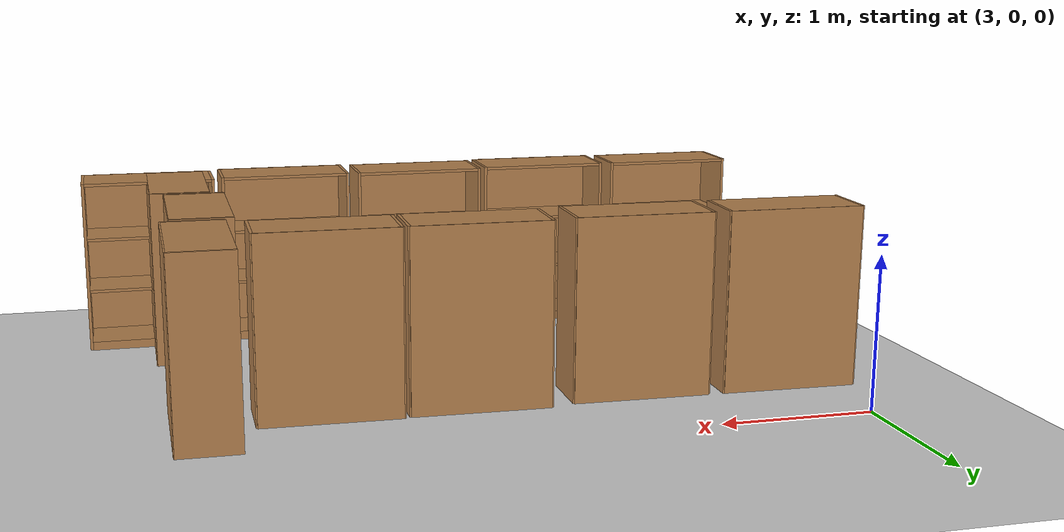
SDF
<sdf version="1.6">
 <world name="default">
  <model name="ground_plane">
   <static>1</static>
   <link name="link">
    <collision name="collision">
     <geometry><plane><normal>0 0 1</normal><size>100 100</size></plane></geometry>
     <surface><friction><ode><mu>100</mu><mu2>50</mu2></ode></friction></surface>
    </collision>
    <visual name="visual">
     <cast_shadows>0</cast_shadows>
     <geometry><plane><normal>0 0 1</normal><size>100 100</size></plane></geometry>
     <material>
      <script><uri>file://media/materials/scripts/gazebo.material</uri><name>Gazebo/Grey</name></script>
     </material>
    </visual>
   </link>
  </model>
  <model name="bookshelf_0_clone_6_clone">
   <static>1</static>
   <link name="link">
    <inertial><mass>1</mass></inertial>
    <collision name="back">
     <pose>0 0.005 0.6 0 -0 0</pose>
     <geometry><box><size>0.9 0.01 1.2</size></box></geometry>
    </collision>
    <visual name="visual1">
     <pose>0 0.005 0.6 0 -0 0</pose>
     <geometry><box><size>0.9 0.01 1.2</size></box></geometry>
     <material>
      <script><uri>file://media/materials/scripts/gazebo.material</uri><name>Gazebo/Wood</name></script>
     </material>
    </visual>
    <collision name="left_side">
     <pose>0.45 -0.195 0.6 0 -0 0</pose>
     <geometry><box><size>0.02 0.4 1.2</size></box></geometry>
    </collision>
    <visual name="visual2">
     <pose>0.45 -0.195 0.6 0 -0 0</pose>
     <geometry><box><size>0.02 0.4 1.2</size></box></geometry>
     <material>
      <script><uri>file://media/materials/scripts/gazebo.material</uri><name>Gazebo/Wood</name></script>
     </material>
    </visual>
    <collision name="right_side">
     <pose>-0.45 -0.195 0.6 0 -0 0</pose>
     <geometry><box><size>0.02 0.4 1.2</size></box></geometry>
    </collision>
    <visual name="visual3">
     <pose>-0.45 -0.195 0.6 0 -0 0</pose>
     <geometry><box><size>0.02 0.4 1.2</size></box></geometry>
     <material>
      <script><uri>file://media/materials/scripts/gazebo.material</uri><name>Gazebo/Wood</name></script>
     </material>
    </visual>
    <collision name="bottom">
     <pose>0 -0.195 0.03 0 -0 0</pose>
     <geometry><box><size>0.88 0.4 0.06</size></box></geometry>
    </collision>
    <visual name="visual4">
     <pose>0 -0.195 0.03 0 -0 0</pose>
     <geometry><box><size>0.88 0.4 0.06</size></box></geometry>
     <material>
      <script><uri>file://media/materials/scripts/gazebo.material</uri><name>Gazebo/Wood</name></script>
     </material>
    </visual>
    <collision name="top">
     <pose>0 -0.195 1.19 0 -0 0</pose>
     <geometry><box><size>0.88 0.4 0.02</size></box></geometry>
    </collision>
    <visual name="visual5">
     <pose>0 -0.195 1.19 0 -0 0</pose>
     <geometry><box><size>0.88 0.4 0.02</size></box></geometry>
     <material>
      <script><uri>file://media/materials/scripts/gazebo.material</uri><name>Gazebo/Wood</name></script>
     </material>
    </visual>
    <collision name="low_shelf">
     <pose>0 -0.195 0.43 0 -0 0</pose>
     <geometry><box><size>0.88 0.4 0.02</size></box></geometry>
    </collision>
    <visual name="visual6">
     <pose>0 -0.195 0.43 0 -0 0</pose>
     <geometry><box><size>0.88 0.4 0.02</size></box></geometry>
     <material>
      <script><uri>file://media/materials/scripts/gazebo.material</uri><name>Gazebo/Wood</name></script>
     </material>
    </visual>
    <collision name="high_shelf">
     <pose>0 -0.195 0.8 0 -0 0</pose>
     <geometry><box><size>0.88 0.4 0.02</size></box></geometry>
    </collision>
    <visual name="visual7">
     <pose>0 -0.195 0.8 0 -0 0</pose>
     <geometry><box><size>0.88 0.4 0.02</size></box></geometry>
     <material>
      <script><uri>file://media/materials/scripts/gazebo.material</uri><name>Gazebo/Wood</name></script>
     </material>
    </visual>
   </link>
   <pose>6.29282 -3.03785 0 0 -0 3.14</pose>
  </model>
  <model name="bookshelf_0_clone_6_clone_clone">
   <static>1</static>
   <link name="link">
    <inertial><mass>1</mass></inertial>
    <collision name="back">
     <pose>0 0.005 0.6 0 -0 0</pose>
     <geometry><box><size>0.9 0.01 1.2</size></box></geometry>
    </collision>
    <visual name="visual1">
     <pose>0 0.005 0.6 0 -0 0</pose>
     <geometry><box><size>0.9 0.01 1.2</size></box></geometry>
     <material>
      <script><uri>file://media/materials/scripts/gazebo.material</uri><name>Gazebo/Wood</name></script>
     </material>
    </visual>
    <collision name="left_side">
     <pose>0.45 -0.195 0.6 0 -0 0</pose>
     <geometry><box><size>0.02 0.4 1.2</size></box></geometry>
    </collision>
    <visual name="visual2">
     <pose>0.45 -0.195 0.6 0 -0 0</pose>
     <geometry><box><size>0.02 0.4 1.2</size></box></geometry>
     <material>
      <script><uri>file://media/materials/scripts/gazebo.material</uri><name>Gazebo/Wood</name></script>
     </material>
    </visual>
    <collision name="right_side">
     <pose>-0.45 -0.195 0.6 0 -0 0</pose>
     <geometry><box><size>0.02 0.4 1.2</size></box></geometry>
    </collision>
    <visual name="visual3">
     <pose>-0.45 -0.195 0.6 0 -0 0</pose>
     <geometry><box><size>0.02 0.4 1.2</size></box></geometry>
     <material>
      <script><uri>file://media/materials/scripts/gazebo.material</uri><name>Gazebo/Wood</name></script>
     </material>
    </visual>
    <collision name="bottom">
     <pose>0 -0.195 0.03 0 -0 0</pose>
     <geometry><box><size>0.88 0.4 0.06</size></box></geometry>
    </collision>
    <visual name="visual4">
     <pose>0 -0.195 0.03 0 -0 0</pose>
     <geometry><box><size>0.88 0.4 0.06</size></box></geometry>
     <material>
      <script><uri>file://media/materials/scripts/gazebo.material</uri><name>Gazebo/Wood</name></script>
     </material>
    </visual>
    <collision name="top">
     <pose>0 -0.195 1.19 0 -0 0</pose>
     <geometry><box><size>0.88 0.4 0.02</size></box></geometry>
    </collision>
    <visual name="visual5">
     <pose>0 -0.195 1.19 0 -0 0</pose>
     <geometry><box><size>0.88 0.4 0.02</size></box></geometry>
     <material>
      <script><uri>file://media/materials/scripts/gazebo.material</uri><name>Gazebo/Wood</name></script>
     </material>
    </visual>
    <collision name="low_shelf">
     <pose>0 -0.195 0.43 0 -0 0</pose>
     <geometry><box><size>0.88 0.4 0.02</size></box></geometry>
    </collision>
    <visual name="visual6">
     <pose>0 -0.195 0.43 0 -0 0</pose>
     <geometry><box><size>0.88 0.4 0.02</size></box></geometry>
     <material>
      <script><uri>file://media/materials/scripts/gazebo.material</uri><name>Gazebo/Wood</name></script>
     </material>
    </visual>
    <collision name="high_shelf">
     <pose>0 -0.195 0.8 0 -0 0</pose>
     <geometry><box><size>0.88 0.4 0.02</size></box></geometry>
    </collision>
    <visual name="visual7">
     <pose>0 -0.195 0.8 0 -0 0</pose>
     <geometry><box><size>0.88 0.4 0.02</size></box></geometry>
     <material>
      <script><uri>file://media/materials/scripts/gazebo.material</uri><name>Gazebo/Wood</name></script>
     </material>
    </visual>
   </link>
   <pose>7.26558 -2.99057 0 0 -0 3.14</pose>
  </model>
  <model name="bookshelf_0_clone_6_clone_clone_0">
   <static>1</static>
   <link name="link">
    <inertial><mass>1</mass></inertial>
    <collision name="back">
     <pose>0 0.005 0.6 0 -0 0</pose>
     <geometry><box><size>0.9 0.01 1.2</size></box></geometry>
    </collision>
    <visual name="visual1">
     <pose>0 0.005 0.6 0 -0 0</pose>
     <geometry><box><size>0.9 0.01 1.2</size></box></geometry>
     <material>
      <script><uri>file://media/materials/scripts/gazebo.material</uri><name>Gazebo/Wood</name></script>
     </material>
    </visual>
    <collision name="left_side">
     <pose>0.45 -0.195 0.6 0 -0 0</pose>
     <geometry><box><size>0.02 0.4 1.2</size></box></geometry>
    </collision>
    <visual name="visual2">
     <pose>0.45 -0.195 0.6 0 -0 0</pose>
     <geometry><box><size>0.02 0.4 1.2</size></box></geometry>
     <material>
      <script><uri>file://media/materials/scripts/gazebo.material</uri><name>Gazebo/Wood</name></script>
     </material>
    </visual>
    <collision name="right_side">
     <pose>-0.45 -0.195 0.6 0 -0 0</pose>
     <geometry><box><size>0.02 0.4 1.2</size></box></geometry>
    </collision>
    <visual name="visual3">
     <pose>-0.45 -0.195 0.6 0 -0 0</pose>
     <geometry><box><size>0.02 0.4 1.2</size></box></geometry>
     <material>
      <script><uri>file://media/materials/scripts/gazebo.material</uri><name>Gazebo/Wood</name></script>
     </material>
    </visual>
    <collision name="bottom">
     <pose>0 -0.195 0.03 0 -0 0</pose>
     <geometry><box><size>0.88 0.4 0.06</size></box></geometry>
    </collision>
    <visual name="visual4">
     <pose>0 -0.195 0.03 0 -0 0</pose>
     <geometry><box><size>0.88 0.4 0.06</size></box></geometry>
     <material>
      <script><uri>file://media/materials/scripts/gazebo.material</uri><name>Gazebo/Wood</name></script>
     </material>
    </visual>
    <collision name="top">
     <pose>0 -0.195 1.19 0 -0 0</pose>
     <geometry><box><size>0.88 0.4 0.02</size></box></geometry>
    </collision>
    <visual name="visual5">
     <pose>0 -0.195 1.19 0 -0 0</pose>
     <geometry><box><size>0.88 0.4 0.02</size></box></geometry>
     <material>
      <script><uri>file://media/materials/scripts/gazebo.material</uri><name>Gazebo/Wood</name></script>
     </material>
    </visual>
    <collision name="low_shelf">
     <pose>0 -0.195 0.43 0 -0 0</pose>
     <geometry><box><size>0.88 0.4 0.02</size></box></geometry>
    </collision>
    <visual name="visual6">
     <pose>0 -0.195 0.43 0 -0 0</pose>
     <geometry><box><size>0.88 0.4 0.02</size></box></geometry>
     <material>
      <script><uri>file://media/materials/scripts/gazebo.material</uri><name>Gazebo/Wood</name></script>
     </material>
    </visual>
    <collision name="high_shelf">
     <pose>0 -0.195 0.8 0 -0 0</pose>
     <geometry><box><size>0.88 0.4 0.02</size></box></geometry>
    </collision>
    <visual name="visual7">
     <pose>0 -0.195 0.8 0 -0 0</pose>
     <geometry><box><size>0.88 0.4 0.02</size></box></geometry>
     <material>
      <script><uri>file://media/materials/scripts/gazebo.material</uri><name>Gazebo/Wood</name></script>
     </material>
    </visual>
   </link>
   <pose>5.30807 -3.01833 0 0 -0 3.14</pose>
  </model>
  <model name="bookshelf_0_clone_6_clone_clone_1">
   <static>1</static>
   <link name="link">
    <inertial><mass>1</mass></inertial>
    <collision name="back">
     <pose>0 0.005 0.6 0 -0 0</pose>
     <geometry><box><size>0.9 0.01 1.2</size></box></geometry>
    </collision>
    <visual name="visual1">
     <pose>0 0.005 0.6 0 -0 0</pose>
     <geometry><box><size>0.9 0.01 1.2</size></box></geometry>
     <material>
      <script><uri>file://media/materials/scripts/gazebo.material</uri><name>Gazebo/Wood</name></script>
     </material>
    </visual>
    <collision name="left_side">
     <pose>0.45 -0.195 0.6 0 -0 0</pose>
     <geometry><box><size>0.02 0.4 1.2</size></box></geometry>
    </collision>
    <visual name="visual2">
     <pose>0.45 -0.195 0.6 0 -0 0</pose>
     <geometry><box><size>0.02 0.4 1.2</size></box></geometry>
     <material>
      <script><uri>file://media/materials/scripts/gazebo.material</uri><name>Gazebo/Wood</name></script>
     </material>
    </visual>
    <collision name="right_side">
     <pose>-0.45 -0.195 0.6 0 -0 0</pose>
     <geometry><box><size>0.02 0.4 1.2</size></box></geometry>
    </collision>
    <visual name="visual3">
     <pose>-0.45 -0.195 0.6 0 -0 0</pose>
     <geometry><box><size>0.02 0.4 1.2</size></box></geometry>
     <material>
      <script><uri>file://media/materials/scripts/gazebo.material</uri><name>Gazebo/Wood</name></script>
     </material>
    </visual>
    <collision name="bottom">
     <pose>0 -0.195 0.03 0 -0 0</pose>
     <geometry><box><size>0.88 0.4 0.06</size></box></geometry>
    </collision>
    <visual name="visual4">
     <pose>0 -0.195 0.03 0 -0 0</pose>
     <geometry><box><size>0.88 0.4 0.06</size></box></geometry>
     <material>
      <script><uri>file://media/materials/scripts/gazebo.material</uri><name>Gazebo/Wood</name></script>
     </material>
    </visual>
    <collision name="top">
     <pose>0 -0.195 1.19 0 -0 0</pose>
     <geometry><box><size>0.88 0.4 0.02</size></box></geometry>
    </collision>
    <visual name="visual5">
     <pose>0 -0.195 1.19 0 -0 0</pose>
     <geometry><box><size>0.88 0.4 0.02</size></box></geometry>
     <material>
      <script><uri>file://media/materials/scripts/gazebo.material</uri><name>Gazebo/Wood</name></script>
     </material>
    </visual>
    <collision name="low_shelf">
     <pose>0 -0.195 0.43 0 -0 0</pose>
     <geometry><box><size>0.88 0.4 0.02</size></box></geometry>
    </collision>
    <visual name="visual6">
     <pose>0 -0.195 0.43 0 -0 0</pose>
     <geometry><box><size>0.88 0.4 0.02</size></box></geometry>
     <material>
      <script><uri>file://media/materials/scripts/gazebo.material</uri><name>Gazebo/Wood</name></script>
     </material>
    </visual>
    <collision name="high_shelf">
     <pose>0 -0.195 0.8 0 -0 0</pose>
     <geometry><box><size>0.88 0.4 0.02</size></box></geometry>
    </collision>
    <visual name="visual7">
     <pose>0 -0.195 0.8 0 -0 0</pose>
     <geometry><box><size>0.88 0.4 0.02</size></box></geometry>
     <material>
      <script><uri>file://media/materials/scripts/gazebo.material</uri><name>Gazebo/Wood</name></script>
     </material>
    </visual>
   </link>
   <pose>4.34889 -3.05257 0 0 -0 3.14</pose>
  </model>
  <model name="bookshelf_0_clone_6_clone_clone_2">
   <static>1</static>
   <link name="link">
    <inertial><mass>1</mass></inertial>
    <collision name="back">
     <pose>0 0.005 0.6 0 -0 0</pose>
     <geometry><box><size>0.9 0.01 1.2</size></box></geometry>
    </collision>
    <visual name="visual1">
     <pose>0 0.005 0.6 0 -0 0</pose>
     <geometry><box><size>0.9 0.01 1.2</size></box></geometry>
     <material>
      <script><uri>file://media/materials/scripts/gazebo.material</uri><name>Gazebo/Wood</name></script>
     </material>
    </visual>
    <collision name="left_side">
     <pose>0.45 -0.195 0.6 0 -0 0</pose>
     <geometry><box><size>0.02 0.4 1.2</size></box></geometry>
    </collision>
    <visual name="visual2">
     <pose>0.45 -0.195 0.6 0 -0 0</pose>
     <geometry><box><size>0.02 0.4 1.2</size></box></geometry>
     <material>
      <script><uri>file://media/materials/scripts/gazebo.material</uri><name>Gazebo/Wood</name></script>
     </material>
    </visual>
    <collision name="right_side">
     <pose>-0.45 -0.195 0.6 0 -0 0</pose>
     <geometry><box><size>0.02 0.4 1.2</size></box></geometry>
    </collision>
    <visual name="visual3">
     <pose>-0.45 -0.195 0.6 0 -0 0</pose>
     <geometry><box><size>0.02 0.4 1.2</size></box></geometry>
     <material>
      <script><uri>file://media/materials/scripts/gazebo.material</uri><name>Gazebo/Wood</name></script>
     </material>
    </visual>
    <collision name="bottom">
     <pose>0 -0.195 0.03 0 -0 0</pose>
     <geometry><box><size>0.88 0.4 0.06</size></box></geometry>
    </collision>
    <visual name="visual4">
     <pose>0 -0.195 0.03 0 -0 0</pose>
     <geometry><box><size>0.88 0.4 0.06</size></box></geometry>
     <material>
      <script><uri>file://media/materials/scripts/gazebo.material</uri><name>Gazebo/Wood</name></script>
     </material>
    </visual>
    <collision name="top">
     <pose>0 -0.195 1.19 0 -0 0</pose>
     <geometry><box><size>0.88 0.4 0.02</size></box></geometry>
    </collision>
    <visual name="visual5">
     <pose>0 -0.195 1.19 0 -0 0</pose>
     <geometry><box><size>0.88 0.4 0.02</size></box></geometry>
     <material>
      <script><uri>file://media/materials/scripts/gazebo.material</uri><name>Gazebo/Wood</name></script>
     </material>
    </visual>
    <collision name="low_shelf">
     <pose>0 -0.195 0.43 0 -0 0</pose>
     <geometry><box><size>0.88 0.4 0.02</size></box></geometry>
    </collision>
    <visual name="visual6">
     <pose>0 -0.195 0.43 0 -0 0</pose>
     <geometry><box><size>0.88 0.4 0.02</size></box></geometry>
     <material>
      <script><uri>file://media/materials/scripts/gazebo.material</uri><name>Gazebo/Wood</name></script>
     </material>
    </visual>
    <collision name="high_shelf">
     <pose>0 -0.195 0.8 0 -0 0</pose>
     <geometry><box><size>0.88 0.4 0.02</size></box></geometry>
    </collision>
    <visual name="visual7">
     <pose>0 -0.195 0.8 0 -0 0</pose>
     <geometry><box><size>0.88 0.4 0.02</size></box></geometry>
     <material>
      <script><uri>file://media/materials/scripts/gazebo.material</uri><name>Gazebo/Wood</name></script>
     </material>
    </visual>
   </link>
   <pose>3.36326 -3.03364 0 0 -0 3.14</pose>
  </model>
  <model name="bookshelf_0_clone_6_clone_clone_13_clone_clone_clone_0">
   <static>1</static>
   <link name="link">
    <inertial><mass>1</mass></inertial>
    <collision name="back">
     <pose>0 0.005 0.6 0 -0 0</pose>
     <geometry><box><size>0.9 0.01 1.2</size></box></geometry>
    </collision>
    <visual name="visual1">
     <pose>0 0.005 0.6 0 -0 0</pose>
     <geometry><box><size>0.9 0.01 1.2</size></box></geometry>
     <material>
      <script><uri>file://media/materials/scripts/gazebo.material</uri><name>Gazebo/Wood</name></script>
     </material>
    </visual>
    <collision name="left_side">
     <pose>0.45 -0.195 0.6 0 -0 0</pose>
     <geometry><box><size>0.02 0.4 1.2</size></box></geometry>
    </collision>
    <visual name="visual2">
     <pose>0.45 -0.195 0.6 0 -0 0</pose>
     <geometry><box><size>0.02 0.4 1.2</size></box></geometry>
     <material>
      <script><uri>file://media/materials/scripts/gazebo.material</uri><name>Gazebo/Wood</name></script>
     </material>
    </visual>
    <collision name="right_side">
     <pose>-0.45 -0.195 0.6 0 -0 0</pose>
     <geometry><box><size>0.02 0.4 1.2</size></box></geometry>
    </collision>
    <visual name="visual3">
     <pose>-0.45 -0.195 0.6 0 -0 0</pose>
     <geometry><box><size>0.02 0.4 1.2</size></box></geometry>
     <material>
      <script><uri>file://media/materials/scripts/gazebo.material</uri><name>Gazebo/Wood</name></script>
     </material>
    </visual>
    <collision name="bottom">
     <pose>0 -0.195 0.03 0 -0 0</pose>
     <geometry><box><size>0.88 0.4 0.06</size></box></geometry>
    </collision>
    <visual name="visual4">
     <pose>0 -0.195 0.03 0 -0 0</pose>
     <geometry><box><size>0.88 0.4 0.06</size></box></geometry>
     <material>
      <script><uri>file://media/materials/scripts/gazebo.material</uri><name>Gazebo/Wood</name></script>
     </material>
    </visual>
    <collision name="top">
     <pose>0 -0.195 1.19 0 -0 0</pose>
     <geometry><box><size>0.88 0.4 0.02</size></box></geometry>
    </collision>
    <visual name="visual5">
     <pose>0 -0.195 1.19 0 -0 0</pose>
     <geometry><box><size>0.88 0.4 0.02</size></box></geometry>
     <material>
      <script><uri>file://media/materials/scripts/gazebo.material</uri><name>Gazebo/Wood</name></script>
     </material>
    </visual>
    <collision name="low_shelf">
     <pose>0 -0.195 0.43 0 -0 0</pose>
     <geometry><box><size>0.88 0.4 0.02</size></box></geometry>
    </collision>
    <visual name="visual6">
     <pose>0 -0.195 0.43 0 -0 0</pose>
     <geometry><box><size>0.88 0.4 0.02</size></box></geometry>
     <material>
      <script><uri>file://media/materials/scripts/gazebo.material</uri><name>Gazebo/Wood</name></script>
     </material>
    </visual>
    <collision name="high_shelf">
     <pose>0 -0.195 0.8 0 -0 0</pose>
     <geometry><box><size>0.88 0.4 0.02</size></box></geometry>
    </collision>
    <visual name="visual7">
     <pose>0 -0.195 0.8 0 -0 0</pose>
     <geometry><box><size>0.88 0.4 0.02</size></box></geometry>
     <material>
      <script><uri>file://media/materials/scripts/gazebo.material</uri><name>Gazebo/Wood</name></script>
     </material>
    </visual>
   </link>
   <pose>3.28702 -0.572642 0 0 0 -0.024715</pose>
  </model>
  <model name="bookshelf_0_clone_6_clone_clone_13_clone_clone_clone_0_clone">
   <static>1</static>
   <link name="link">
    <inertial><mass>1</mass></inertial>
    <collision name="back">
     <pose>0 0.005 0.6 0 -0 0</pose>
     <geometry><box><size>0.9 0.01 1.2</size></box></geometry>
    </collision>
    <visual name="visual1">
     <pose>0 0.005 0.6 0 -0 0</pose>
     <geometry><box><size>0.9 0.01 1.2</size></box></geometry>
     <material>
      <script><uri>file://media/materials/scripts/gazebo.material</uri><name>Gazebo/Wood</name></script>
     </material>
    </visual>
    <collision name="left_side">
     <pose>0.45 -0.195 0.6 0 -0 0</pose>
     <geometry><box><size>0.02 0.4 1.2</size></box></geometry>
    </collision>
    <visual name="visual2">
     <pose>0.45 -0.195 0.6 0 -0 0</pose>
     <geometry><box><size>0.02 0.4 1.2</size></box></geometry>
     <material>
      <script><uri>file://media/materials/scripts/gazebo.material</uri><name>Gazebo/Wood</name></script>
     </material>
    </visual>
    <collision name="right_side">
     <pose>-0.45 -0.195 0.6 0 -0 0</pose>
     <geometry><box><size>0.02 0.4 1.2</size></box></geometry>
    </collision>
    <visual name="visual3">
     <pose>-0.45 -0.195 0.6 0 -0 0</pose>
     <geometry><box><size>0.02 0.4 1.2</size></box></geometry>
     <material>
      <script><uri>file://media/materials/scripts/gazebo.material</uri><name>Gazebo/Wood</name></script>
     </material>
    </visual>
    <collision name="bottom">
     <pose>0 -0.195 0.03 0 -0 0</pose>
     <geometry><box><size>0.88 0.4 0.06</size></box></geometry>
    </collision>
    <visual name="visual4">
     <pose>0 -0.195 0.03 0 -0 0</pose>
     <geometry><box><size>0.88 0.4 0.06</size></box></geometry>
     <material>
      <script><uri>file://media/materials/scripts/gazebo.material</uri><name>Gazebo/Wood</name></script>
     </material>
    </visual>
    <collision name="top">
     <pose>0 -0.195 1.19 0 -0 0</pose>
     <geometry><box><size>0.88 0.4 0.02</size></box></geometry>
    </collision>
    <visual name="visual5">
     <pose>0 -0.195 1.19 0 -0 0</pose>
     <geometry><box><size>0.88 0.4 0.02</size></box></geometry>
     <material>
      <script><uri>file://media/materials/scripts/gazebo.material</uri><name>Gazebo/Wood</name></script>
     </material>
    </visual>
    <collision name="low_shelf">
     <pose>0 -0.195 0.43 0 -0 0</pose>
     <geometry><box><size>0.88 0.4 0.02</size></box></geometry>
    </collision>
    <visual name="visual6">
     <pose>0 -0.195 0.43 0 -0 0</pose>
     <geometry><box><size>0.88 0.4 0.02</size></box></geometry>
     <material>
      <script><uri>file://media/materials/scripts/gazebo.material</uri><name>Gazebo/Wood</name></script>
     </material>
    </visual>
    <collision name="high_shelf">
     <pose>0 -0.195 0.8 0 -0 0</pose>
     <geometry><box><size>0.88 0.4 0.02</size></box></geometry>
    </collision>
    <visual name="visual7">
     <pose>0 -0.195 0.8 0 -0 0</pose>
     <geometry><box><size>0.88 0.4 0.02</size></box></geometry>
     <material>
      <script><uri>file://media/materials/scripts/gazebo.material</uri><name>Gazebo/Wood</name></script>
     </material>
    </visual>
   </link>
   <pose>4.2972 -0.59636 0 0 0 -0.024715</pose>
  </model>
  <model name="bookshelf_0_clone_6_clone_clone_13_clone_clone_clone_0_clone_0">
   <static>1</static>
   <link name="link">
    <inertial><mass>1</mass></inertial>
    <collision name="back">
     <pose>0 0.005 0.6 0 -0 0</pose>
     <geometry><box><size>0.9 0.01 1.2</size></box></geometry>
    </collision>
    <visual name="visual1">
     <pose>0 0.005 0.6 0 -0 0</pose>
     <geometry><box><size>0.9 0.01 1.2</size></box></geometry>
     <material>
      <script><uri>file://media/materials/scripts/gazebo.material</uri><name>Gazebo/Wood</name></script>
     </material>
    </visual>
    <collision name="left_side">
     <pose>0.45 -0.195 0.6 0 -0 0</pose>
     <geometry><box><size>0.02 0.4 1.2</size></box></geometry>
    </collision>
    <visual name="visual2">
     <pose>0.45 -0.195 0.6 0 -0 0</pose>
     <geometry><box><size>0.02 0.4 1.2</size></box></geometry>
     <material>
      <script><uri>file://media/materials/scripts/gazebo.material</uri><name>Gazebo/Wood</name></script>
     </material>
    </visual>
    <collision name="right_side">
     <pose>-0.45 -0.195 0.6 0 -0 0</pose>
     <geometry><box><size>0.02 0.4 1.2</size></box></geometry>
    </collision>
    <visual name="visual3">
     <pose>-0.45 -0.195 0.6 0 -0 0</pose>
     <geometry><box><size>0.02 0.4 1.2</size></box></geometry>
     <material>
      <script><uri>file://media/materials/scripts/gazebo.material</uri><name>Gazebo/Wood</name></script>
     </material>
    </visual>
    <collision name="bottom">
     <pose>0 -0.195 0.03 0 -0 0</pose>
     <geometry><box><size>0.88 0.4 0.06</size></box></geometry>
    </collision>
    <visual name="visual4">
     <pose>0 -0.195 0.03 0 -0 0</pose>
     <geometry><box><size>0.88 0.4 0.06</size></box></geometry>
     <material>
      <script><uri>file://media/materials/scripts/gazebo.material</uri><name>Gazebo/Wood</name></script>
     </material>
    </visual>
    <collision name="top">
     <pose>0 -0.195 1.19 0 -0 0</pose>
     <geometry><box><size>0.88 0.4 0.02</size></box></geometry>
    </collision>
    <visual name="visual5">
     <pose>0 -0.195 1.19 0 -0 0</pose>
     <geometry><box><size>0.88 0.4 0.02</size></box></geometry>
     <material>
      <script><uri>file://media/materials/scripts/gazebo.material</uri><name>Gazebo/Wood</name></script>
     </material>
    </visual>
    <collision name="low_shelf">
     <pose>0 -0.195 0.43 0 -0 0</pose>
     <geometry><box><size>0.88 0.4 0.02</size></box></geometry>
    </collision>
    <visual name="visual6">
     <pose>0 -0.195 0.43 0 -0 0</pose>
     <geometry><box><size>0.88 0.4 0.02</size></box></geometry>
     <material>
      <script><uri>file://media/materials/scripts/gazebo.material</uri><name>Gazebo/Wood</name></script>
     </material>
    </visual>
    <collision name="high_shelf">
     <pose>0 -0.195 0.8 0 -0 0</pose>
     <geometry><box><size>0.88 0.4 0.02</size></box></geometry>
    </collision>
    <visual name="visual7">
     <pose>0 -0.195 0.8 0 -0 0</pose>
     <geometry><box><size>0.88 0.4 0.02</size></box></geometry>
     <material>
      <script><uri>file://media/materials/scripts/gazebo.material</uri><name>Gazebo/Wood</name></script>
     </material>
    </visual>
   </link>
   <pose>5.35637 -0.579797 0 0 0 -0.024715</pose>
  </model>
  <model name="bookshelf_0_clone_6_clone_clone_13_clone_clone_clone_0_clone_1">
   <static>1</static>
   <link name="link">
    <inertial><mass>1</mass></inertial>
    <collision name="back">
     <pose>0 0.005 0.6 0 -0 0</pose>
     <geometry><box><size>0.9 0.01 1.2</size></box></geometry>
    </collision>
    <visual name="visual1">
     <pose>0 0.005 0.6 0 -0 0</pose>
     <geometry><box><size>0.9 0.01 1.2</size></box></geometry>
     <material>
      <script><uri>file://media/materials/scripts/gazebo.material</uri><name>Gazebo/Wood</name></script>
     </material>
    </visual>
    <collision name="left_side">
     <pose>0.45 -0.195 0.6 0 -0 0</pose>
     <geometry><box><size>0.02 0.4 1.2</size></box></geometry>
    </collision>
    <visual name="visual2">
     <pose>0.45 -0.195 0.6 0 -0 0</pose>
     <geometry><box><size>0.02 0.4 1.2</size></box></geometry>
     <material>
      <script><uri>file://media/materials/scripts/gazebo.material</uri><name>Gazebo/Wood</name></script>
     </material>
    </visual>
    <collision name="right_side">
     <pose>-0.45 -0.195 0.6 0 -0 0</pose>
     <geometry><box><size>0.02 0.4 1.2</size></box></geometry>
    </collision>
    <visual name="visual3">
     <pose>-0.45 -0.195 0.6 0 -0 0</pose>
     <geometry><box><size>0.02 0.4 1.2</size></box></geometry>
     <material>
      <script><uri>file://media/materials/scripts/gazebo.material</uri><name>Gazebo/Wood</name></script>
     </material>
    </visual>
    <collision name="bottom">
     <pose>0 -0.195 0.03 0 -0 0</pose>
     <geometry><box><size>0.88 0.4 0.06</size></box></geometry>
    </collision>
    <visual name="visual4">
     <pose>0 -0.195 0.03 0 -0 0</pose>
     <geometry><box><size>0.88 0.4 0.06</size></box></geometry>
     <material>
      <script><uri>file://media/materials/scripts/gazebo.material</uri><name>Gazebo/Wood</name></script>
     </material>
    </visual>
    <collision name="top">
     <pose>0 -0.195 1.19 0 -0 0</pose>
     <geometry><box><size>0.88 0.4 0.02</size></box></geometry>
    </collision>
    <visual name="visual5">
     <pose>0 -0.195 1.19 0 -0 0</pose>
     <geometry><box><size>0.88 0.4 0.02</size></box></geometry>
     <material>
      <script><uri>file://media/materials/scripts/gazebo.material</uri><name>Gazebo/Wood</name></script>
     </material>
    </visual>
    <collision name="low_shelf">
     <pose>0 -0.195 0.43 0 -0 0</pose>
     <geometry><box><size>0.88 0.4 0.02</size></box></geometry>
    </collision>
    <visual name="visual6">
     <pose>0 -0.195 0.43 0 -0 0</pose>
     <geometry><box><size>0.88 0.4 0.02</size></box></geometry>
     <material>
      <script><uri>file://media/materials/scripts/gazebo.material</uri><name>Gazebo/Wood</name></script>
     </material>
    </visual>
    <collision name="high_shelf">
     <pose>0 -0.195 0.8 0 -0 0</pose>
     <geometry><box><size>0.88 0.4 0.02</size></box></geometry>
    </collision>
    <visual name="visual7">
     <pose>0 -0.195 0.8 0 -0 0</pose>
     <geometry><box><size>0.88 0.4 0.02</size></box></geometry>
     <material>
      <script><uri>file://media/materials/scripts/gazebo.material</uri><name>Gazebo/Wood</name></script>
     </material>
    </visual>
   </link>
   <pose>6.29832 -0.590843 0 0 0 -0.024715</pose>
  </model>
  <model name="bookshelf_0_clone_6_clone_clone_13_clone_clone_clone_0_clone_2">
   <static>1</static>
   <link name="link">
    <inertial><mass>1</mass></inertial>
    <collision name="back">
     <pose>0 0.005 0.6 0 -0 0</pose>
     <geometry><box><size>0.9 0.01 1.2</size></box></geometry>
    </collision>
    <visual name="visual1">
     <pose>0 0.005 0.6 0 -0 0</pose>
     <geometry><box><size>0.9 0.01 1.2</size></box></geometry>
     <material>
      <script><uri>file://media/materials/scripts/gazebo.material</uri><name>Gazebo/Wood</name></script>
     </material>
    </visual>
    <collision name="left_side">
     <pose>0.45 -0.195 0.6 0 -0 0</pose>
     <geometry><box><size>0.02 0.4 1.2</size></box></geometry>
    </collision>
    <visual name="visual2">
     <pose>0.45 -0.195 0.6 0 -0 0</pose>
     <geometry><box><size>0.02 0.4 1.2</size></box></geometry>
     <material>
      <script><uri>file://media/materials/scripts/gazebo.material</uri><name>Gazebo/Wood</name></script>
     </material>
    </visual>
    <collision name="right_side">
     <pose>-0.45 -0.195 0.6 0 -0 0</pose>
     <geometry><box><size>0.02 0.4 1.2</size></box></geometry>
    </collision>
    <visual name="visual3">
     <pose>-0.45 -0.195 0.6 0 -0 0</pose>
     <geometry><box><size>0.02 0.4 1.2</size></box></geometry>
     <material>
      <script><uri>file://media/materials/scripts/gazebo.material</uri><name>Gazebo/Wood</name></script>
     </material>
    </visual>
    <collision name="bottom">
     <pose>0 -0.195 0.03 0 -0 0</pose>
     <geometry><box><size>0.88 0.4 0.06</size></box></geometry>
    </collision>
    <visual name="visual4">
     <pose>0 -0.195 0.03 0 -0 0</pose>
     <geometry><box><size>0.88 0.4 0.06</size></box></geometry>
     <material>
      <script><uri>file://media/materials/scripts/gazebo.material</uri><name>Gazebo/Wood</name></script>
     </material>
    </visual>
    <collision name="top">
     <pose>0 -0.195 1.19 0 -0 0</pose>
     <geometry><box><size>0.88 0.4 0.02</size></box></geometry>
    </collision>
    <visual name="visual5">
     <pose>0 -0.195 1.19 0 -0 0</pose>
     <geometry><box><size>0.88 0.4 0.02</size></box></geometry>
     <material>
      <script><uri>file://media/materials/scripts/gazebo.material</uri><name>Gazebo/Wood</name></script>
     </material>
    </visual>
    <collision name="low_shelf">
     <pose>0 -0.195 0.43 0 -0 0</pose>
     <geometry><box><size>0.88 0.4 0.02</size></box></geometry>
    </collision>
    <visual name="visual6">
     <pose>0 -0.195 0.43 0 -0 0</pose>
     <geometry><box><size>0.88 0.4 0.02</size></box></geometry>
     <material>
      <script><uri>file://media/materials/scripts/gazebo.material</uri><name>Gazebo/Wood</name></script>
     </material>
    </visual>
    <collision name="high_shelf">
     <pose>0 -0.195 0.8 0 -0 0</pose>
     <geometry><box><size>0.88 0.4 0.02</size></box></geometry>
    </collision>
    <visual name="visual7">
     <pose>0 -0.195 0.8 0 -0 0</pose>
     <geometry><box><size>0.88 0.4 0.02</size></box></geometry>
     <material>
      <script><uri>file://media/materials/scripts/gazebo.material</uri><name>Gazebo/Wood</name></script>
     </material>
    </visual>
   </link>
   <pose>7.2546 -0.630083 0 0 0 -1.58257</pose>
  </model>
  <model name="bookshelf_0_clone_6_clone_clone_13_clone_clone_clone_0_clone_2_clone">
   <static>1</static>
   <link name="link">
    <inertial><mass>1</mass></inertial>
    <collision name="back">
     <pose>0 0.005 0.6 0 -0 0</pose>
     <geometry><box><size>0.9 0.01 1.2</size></box></geometry>
    </collision>
    <visual name="visual1">
     <pose>0 0.005 0.6 0 -0 0</pose>
     <geometry><box><size>0.9 0.01 1.2</size></box></geometry>
     <material>
      <script><uri>file://media/materials/scripts/gazebo.material</uri><name>Gazebo/Wood</name></script>
     </material>
    </visual>
    <collision name="left_side">
     <pose>0.45 -0.195 0.6 0 -0 0</pose>
     <geometry><box><size>0.02 0.4 1.2</size></box></geometry>
    </collision>
    <visual name="visual2">
     <pose>0.45 -0.195 0.6 0 -0 0</pose>
     <geometry><box><size>0.02 0.4 1.2</size></box></geometry>
     <material>
      <script><uri>file://media/materials/scripts/gazebo.material</uri><name>Gazebo/Wood</name></script>
     </material>
    </visual>
    <collision name="right_side">
     <pose>-0.45 -0.195 0.6 0 -0 0</pose>
     <geometry><box><size>0.02 0.4 1.2</size></box></geometry>
    </collision>
    <visual name="visual3">
     <pose>-0.45 -0.195 0.6 0 -0 0</pose>
     <geometry><box><size>0.02 0.4 1.2</size></box></geometry>
     <material>
      <script><uri>file://media/materials/scripts/gazebo.material</uri><name>Gazebo/Wood</name></script>
     </material>
    </visual>
    <collision name="bottom">
     <pose>0 -0.195 0.03 0 -0 0</pose>
     <geometry><box><size>0.88 0.4 0.06</size></box></geometry>
    </collision>
    <visual name="visual4">
     <pose>0 -0.195 0.03 0 -0 0</pose>
     <geometry><box><size>0.88 0.4 0.06</size></box></geometry>
     <material>
      <script><uri>file://media/materials/scripts/gazebo.material</uri><name>Gazebo/Wood</name></script>
     </material>
    </visual>
    <collision name="top">
     <pose>0 -0.195 1.19 0 -0 0</pose>
     <geometry><box><size>0.88 0.4 0.02</size></box></geometry>
    </collision>
    <visual name="visual5">
     <pose>0 -0.195 1.19 0 -0 0</pose>
     <geometry><box><size>0.88 0.4 0.02</size></box></geometry>
     <material>
      <script><uri>file://media/materials/scripts/gazebo.material</uri><name>Gazebo/Wood</name></script>
     </material>
    </visual>
    <collision name="low_shelf">
     <pose>0 -0.195 0.43 0 -0 0</pose>
     <geometry><box><size>0.88 0.4 0.02</size></box></geometry>
    </collision>
    <visual name="visual6">
     <pose>0 -0.195 0.43 0 -0 0</pose>
     <geometry><box><size>0.88 0.4 0.02</size></box></geometry>
     <material>
      <script><uri>file://media/materials/scripts/gazebo.material</uri><name>Gazebo/Wood</name></script>
     </material>
    </visual>
    <collision name="high_shelf">
     <pose>0 -0.195 0.8 0 -0 0</pose>
     <geometry><box><size>0.88 0.4 0.02</size></box></geometry>
    </collision>
    <visual name="visual7">
     <pose>0 -0.195 0.8 0 -0 0</pose>
     <geometry><box><size>0.88 0.4 0.02</size></box></geometry>
     <material>
      <script><uri>file://media/materials/scripts/gazebo.material</uri><name>Gazebo/Wood</name></script>
     </material>
    </visual>
   </link>
   <pose>7.18568 -1.59079 0 0 0 -1.58257</pose>
  </model>
  <model name="bookshelf_0_clone_6_clone_clone_13_clone_clone_clone_0_clone_2_clone_0">
   <static>1</static>
   <link name="link">
    <inertial><mass>1</mass></inertial>
    <collision name="back">
     <pose>0 0.005 0.6 0 -0 0</pose>
     <geometry><box><size>0.9 0.01 1.2</size></box></geometry>
    </collision>
    <visual name="visual1">
     <pose>0 0.005 0.6 0 -0 0</pose>
     <geometry><box><size>0.9 0.01 1.2</size></box></geometry>
     <material>
      <script><uri>file://media/materials/scripts/gazebo.material</uri><name>Gazebo/Wood</name></script>
     </material>
    </visual>
    <collision name="left_side">
     <pose>0.45 -0.195 0.6 0 -0 0</pose>
     <geometry><box><size>0.02 0.4 1.2</size></box></geometry>
    </collision>
    <visual name="visual2">
     <pose>0.45 -0.195 0.6 0 -0 0</pose>
     <geometry><box><size>0.02 0.4 1.2</size></box></geometry>
     <material>
      <script><uri>file://media/materials/scripts/gazebo.material</uri><name>Gazebo/Wood</name></script>
     </material>
    </visual>
    <collision name="right_side">
     <pose>-0.45 -0.195 0.6 0 -0 0</pose>
     <geometry><box><size>0.02 0.4 1.2</size></box></geometry>
    </collision>
    <visual name="visual3">
     <pose>-0.45 -0.195 0.6 0 -0 0</pose>
     <geometry><box><size>0.02 0.4 1.2</size></box></geometry>
     <material>
      <script><uri>file://media/materials/scripts/gazebo.material</uri><name>Gazebo/Wood</name></script>
     </material>
    </visual>
    <collision name="bottom">
     <pose>0 -0.195 0.03 0 -0 0</pose>
     <geometry><box><size>0.88 0.4 0.06</size></box></geometry>
    </collision>
    <visual name="visual4">
     <pose>0 -0.195 0.03 0 -0 0</pose>
     <geometry><box><size>0.88 0.4 0.06</size></box></geometry>
     <material>
      <script><uri>file://media/materials/scripts/gazebo.material</uri><name>Gazebo/Wood</name></script>
     </material>
    </visual>
    <collision name="top">
     <pose>0 -0.195 1.19 0 -0 0</pose>
     <geometry><box><size>0.88 0.4 0.02</size></box></geometry>
    </collision>
    <visual name="visual5">
     <pose>0 -0.195 1.19 0 -0 0</pose>
     <geometry><box><size>0.88 0.4 0.02</size></box></geometry>
     <material>
      <script><uri>file://media/materials/scripts/gazebo.material</uri><name>Gazebo/Wood</name></script>
     </material>
    </visual>
    <collision name="low_shelf">
     <pose>0 -0.195 0.43 0 -0 0</pose>
     <geometry><box><size>0.88 0.4 0.02</size></box></geometry>
    </collision>
    <visual name="visual6">
     <pose>0 -0.195 0.43 0 -0 0</pose>
     <geometry><box><size>0.88 0.4 0.02</size></box></geometry>
     <material>
      <script><uri>file://media/materials/scripts/gazebo.material</uri><name>Gazebo/Wood</name></script>
     </material>
    </visual>
    <collision name="high_shelf">
     <pose>0 -0.195 0.8 0 -0 0</pose>
     <geometry><box><size>0.88 0.4 0.02</size></box></geometry>
    </collision>
    <visual name="visual7">
     <pose>0 -0.195 0.8 0 -0 0</pose>
     <geometry><box><size>0.88 0.4 0.02</size></box></geometry>
     <material>
      <script><uri>file://media/materials/scripts/gazebo.material</uri><name>Gazebo/Wood</name></script>
     </material>
    </visual>
   </link>
   <pose>7.2666 -2.53923 0 0 0 -1.58257</pose>
  </model>
 </world>
</sdf>
